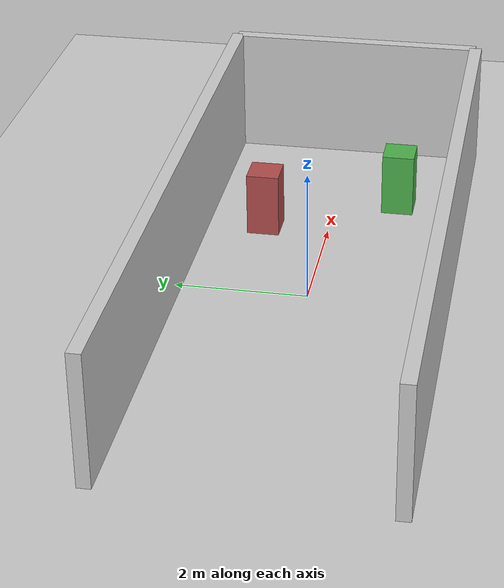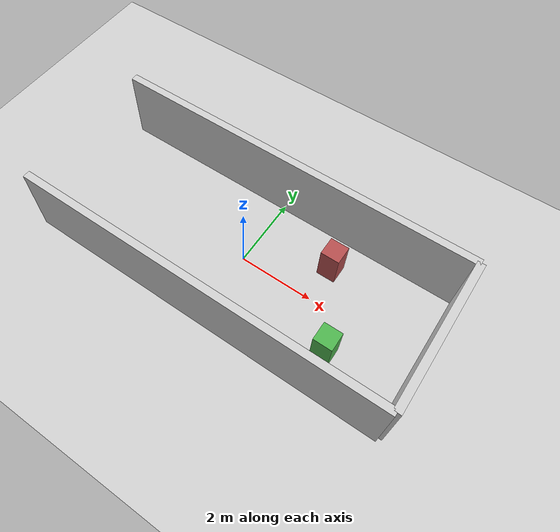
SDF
<?xml version="1.0"?>
<sdf version="1.6">
  <world name="simple_corridor">

    <!-- Physics settings -->
    <physics type="ode">
      <real_time_update_rate>1000.0</real_time_update_rate>
      <max_step_size>0.001</max_step_size>
      <real_time_factor>1</real_time_factor>
    </physics>

    <!-- Lighting -->
    <include>
      <uri>model://sun</uri>
    </include>

    <!-- Ground plane -->
    <include>
      <uri>model://ground_plane</uri>
    </include>

    <!-- Left wall (10m long) -->
    <model name="wall_left">
      <static>true</static>
      <pose>0 2 1 0 0 0</pose>
      <link name="link">
        <collision name="collision">
          <geometry>
            <box>
              <size>10 0.2 2</size>
            </box>
          </geometry>
        </collision>
        <visual name="visual">
          <geometry>
            <box>
              <size>10 0.2 2</size>
            </box>
          </geometry>
          <material>
            <ambient>0.8 0.8 0.8 1</ambient>
            <diffuse>0.8 0.8 0.8 1</diffuse>
          </material>
        </visual>
      </link>
    </model>

    <!-- Right wall (10m long) -->
    <model name="wall_right">
      <static>true</static>
      <pose>0 -2 1 0 0 0</pose>
      <link name="link">
        <collision name="collision">
          <geometry>
            <box>
              <size>10 0.2 2</size>
            </box>
          </geometry>
        </collision>
        <visual name="visual">
          <geometry>
            <box>
              <size>10 0.2 2</size>
            </box>
          </geometry>
          <material>
            <ambient>0.8 0.8 0.8 1</ambient>
            <diffuse>0.8 0.8 0.8 1</diffuse>
          </material>
        </visual>
      </link>
    </model>

    <!-- Front wall -->
    <model name="wall_front">
      <static>true</static>
      <pose>5 0 1 0 0 0</pose>
      <link name="link">
        <collision name="collision">
          <geometry>
            <box>
              <size>0.2 4 2</size>
            </box>
          </geometry>
        </collision>
        <visual name="visual">
          <geometry>
            <box>
              <size>0.2 4 2</size>
            </box>
          </geometry>
          <material>
            <ambient>0.8 0.8 0.8 1</ambient>
            <diffuse>0.8 0.8 0.8 1</diffuse>
          </material>
        </visual>
      </link>
    </model>

    <!-- Obstacle 1: Box on left side -->
    <model name="obstacle_box_1">
      <static>true</static>
      <pose>2 1 0.5 0 0 0</pose>
      <link name="link">
        <collision name="collision">
          <geometry>
            <box>
              <size>0.5 0.5 1</size>
            </box>
          </geometry>
        </collision>
        <visual name="visual">
          <geometry>
            <box>
              <size>0.5 0.5 1</size>
            </box>
          </geometry>
          <material>
            <ambient>0.7 0.3 0.3 1</ambient>
            <diffuse>0.7 0.3 0.3 1</diffuse>
          </material>
        </visual>
      </link>
    </model>

    <!-- Obstacle 2: Box on right side -->
    <model name="obstacle_box_2">
      <static>true</static>
      <pose>3 -1 0.5 0 0 0</pose>
      <link name="link">
        <collision name="collision">
          <geometry>
            <box>
              <size>0.5 0.5 1</size>
            </box>
          </geometry>
        </collision>
        <visual name="visual">
          <geometry>
            <box>
              <size>0.5 0.5 1</size>
            </box>
          </geometry>
          <material>
            <ambient>0.3 0.7 0.3 1</ambient>
            <diffuse>0.3 0.7 0.3 1</diffuse>
          </material>
        </visual>
      </link>
    </model>

    <!-- Scene settings -->
    <scene>
      <ambient>0.4 0.4 0.4 1</ambient>
      <background>0.7 0.7 0.7 1</background>
      <shadows>true</shadows>
    </scene>

    <!-- GUI camera -->
    <gui fullscreen='0'>
      <camera name='user_camera'>
        <pose>-5 0 8 0 0.8 0</pose>
        <view_controller>orbit</view_controller>
      </camera>
    </gui>

  </world>
</sdf>
